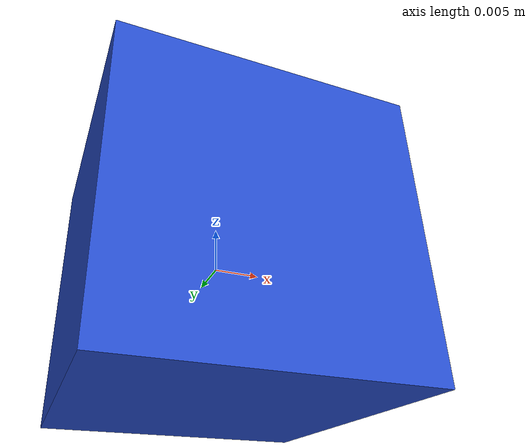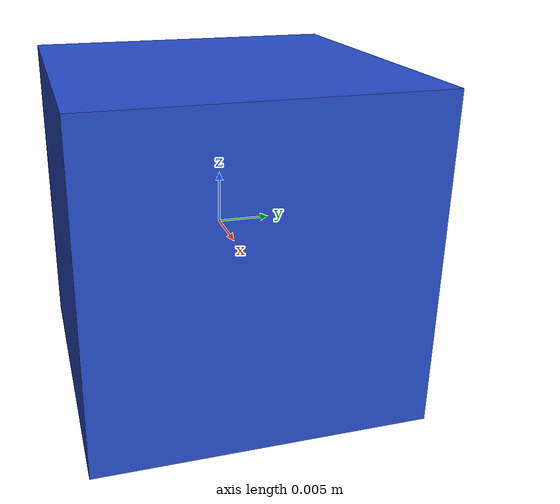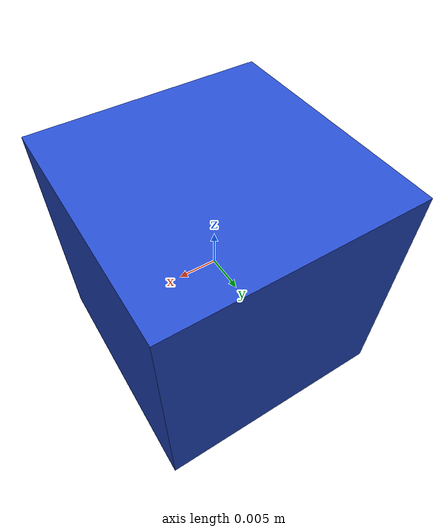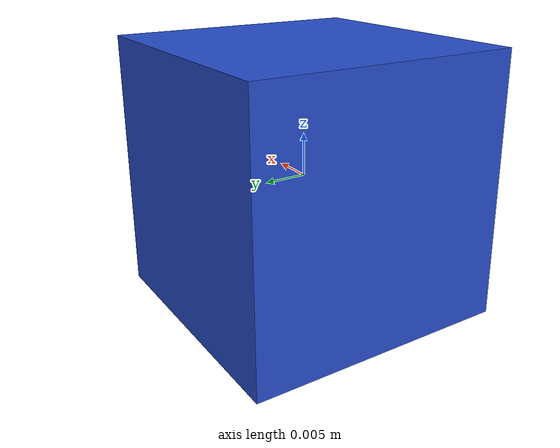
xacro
<?xml version="1.0"?>
<robot xmlns:xacro="http://wiki.ros.org/xacro" name="LegoBlue">

  <link name="world">
  </link>

  <joint name="world_joint" type="fixed">
    <parent link="world"/>
    <child link="legostein_link"/>
    <axis xyz="1 1 1" />
    <dynamics damping="0.5" friction="0.5"/>
    <origin xyz="0.0 0.0 0.0" rpy="0 0 0"/>
  </joint>

  <link name="legostein_link">
    <collision>
      <origin xyz="0 0 0" rpy="0 0 0"/>
      <geometry>
        <box size="0.031 0.08 0.031"/>
      </geometry>
      <mu value="0.5"/>
    </collision>

    <visual>
      <origin xyz="0 0 0" rpy="0 0 0"/>
      <geometry>
        <box size="0.031 0.031 0.031"/>
      </geometry>
    </visual>

    <inertial>
      <origin xyz="0 0 0" rpy="0 0 0"/>
      <mass value="0.1"/>
      <inertia
        ixx="0.001" ixy="0.0" ixz="0.0"
        iyy="0.001" iyz="0.0"
        izz="0.001"/>
    </inertial>
    <self_collide>1</self_collide>
  </link>

  <gazebo reference="legostein_link">
    <material>Gazebo/Blue</material>
  </gazebo>

</robot>
